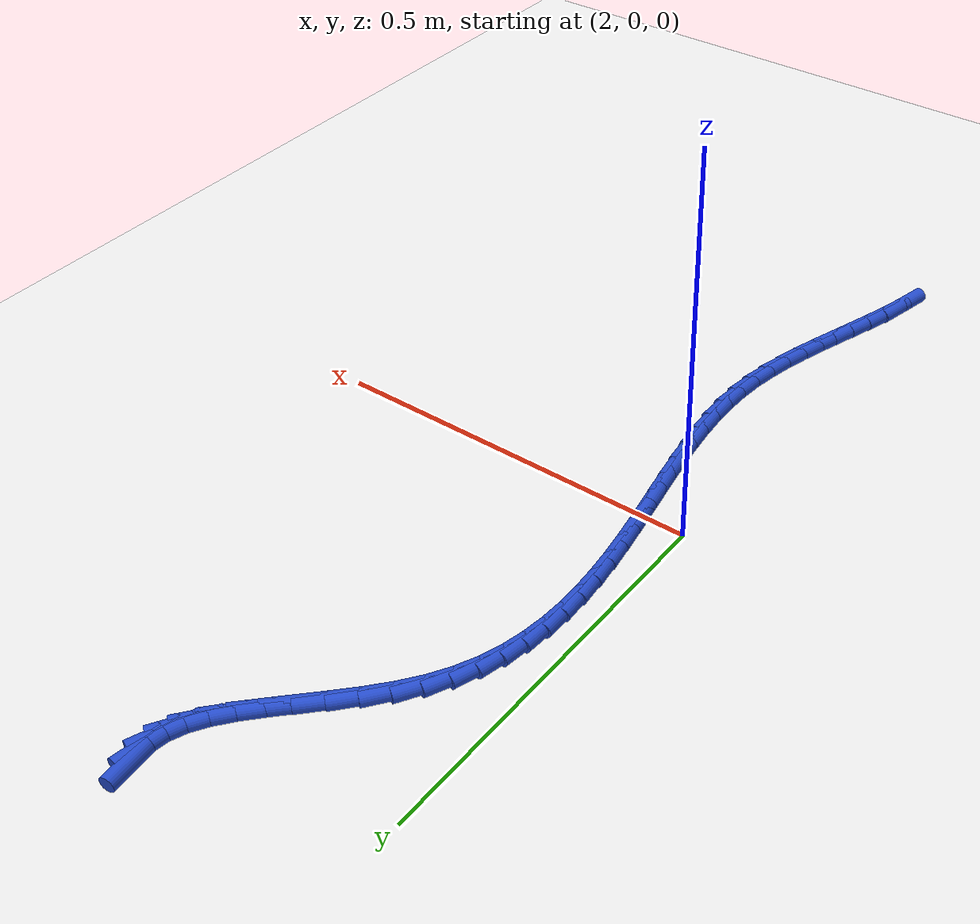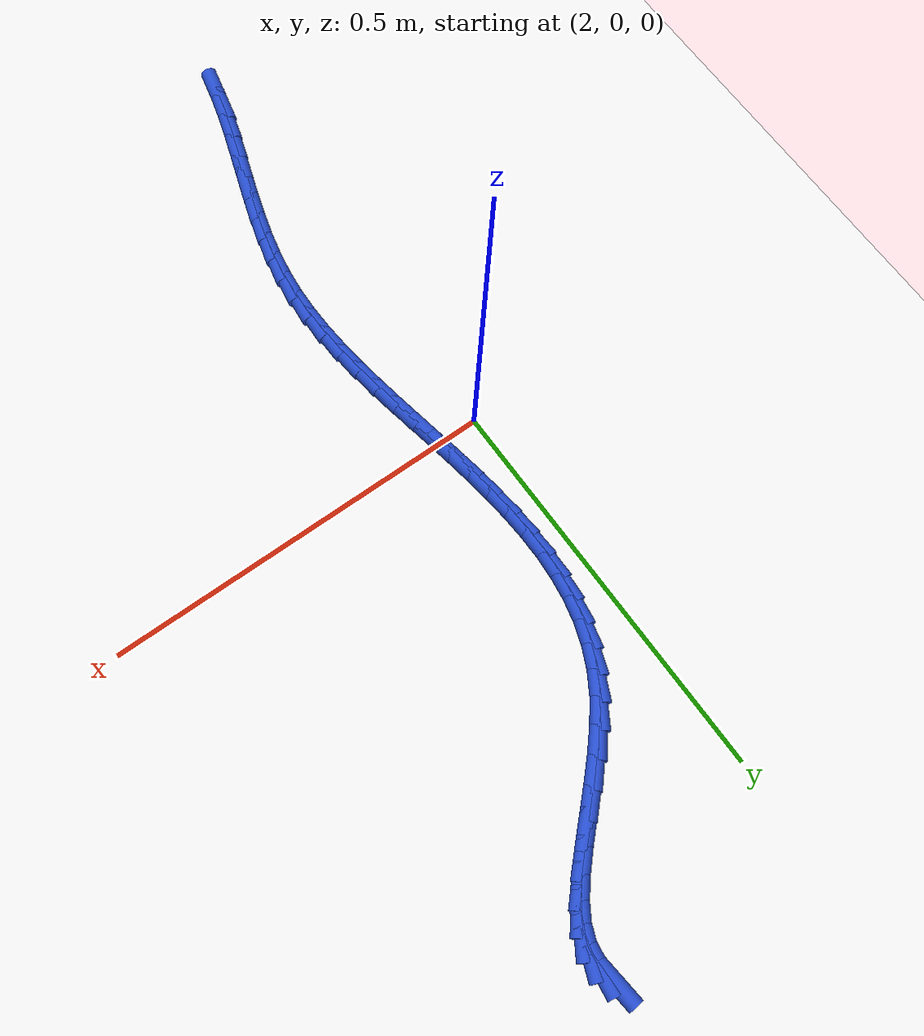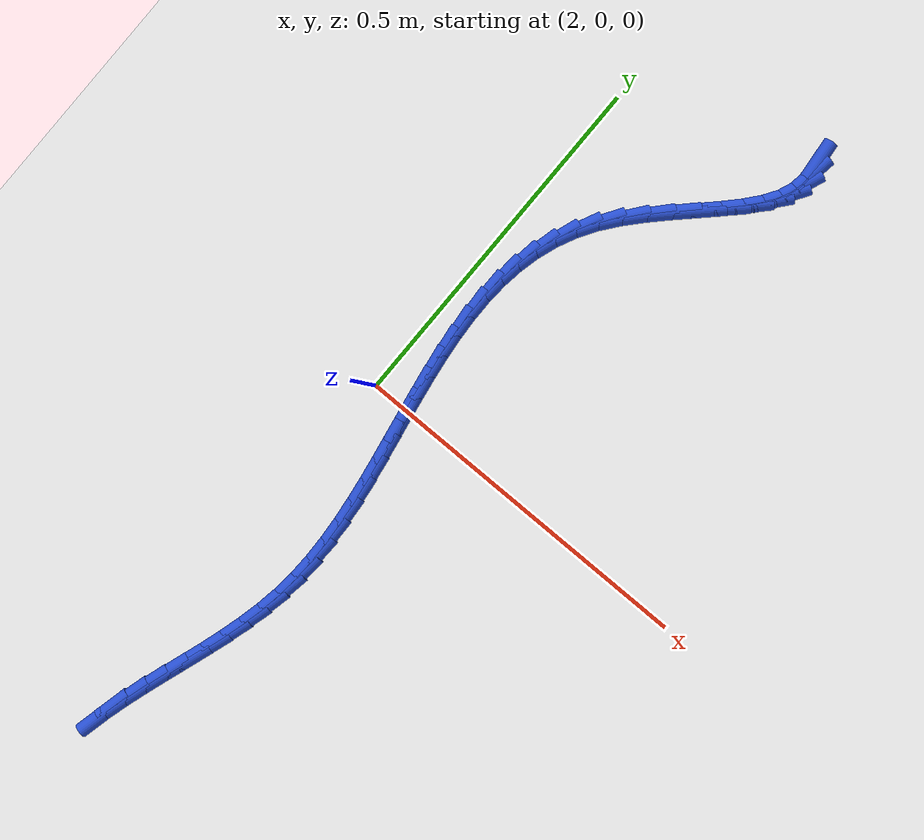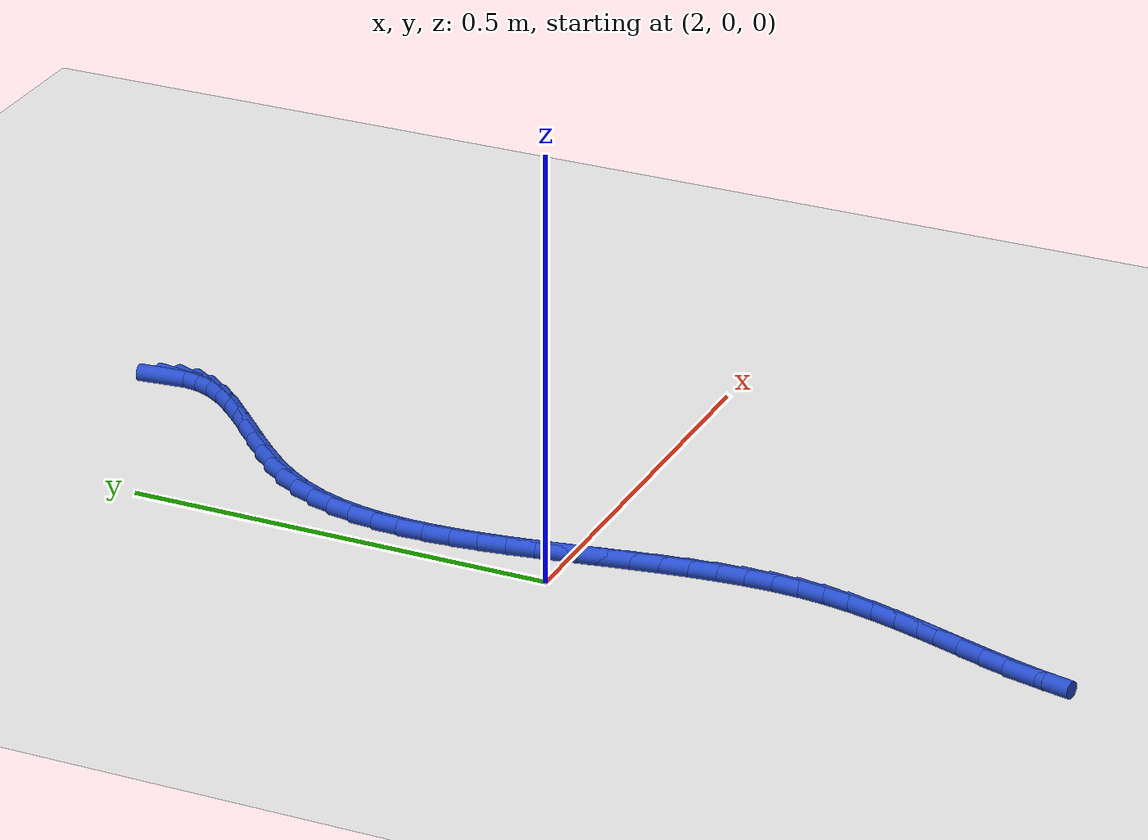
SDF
<sdf version="1.6">
 <world name="default">
  <model name="ground_plane">
   <static>1</static>
   <link name="link">
    <collision name="collision">
     <geometry><plane><normal>0 0 1</normal><size>100 100</size></plane></geometry>
     <surface><friction><ode><mu>100</mu><mu2>50</mu2></ode></friction></surface>
    </collision>
    <visual name="visual">
     <cast_shadows>0</cast_shadows>
     <geometry><plane><normal>0 0 1</normal><size>100 100</size></plane></geometry>
     <material>
      <script><uri>file://media/materials/scripts/gazebo.material</uri><name>Gazebo/WhiteGlow</name></script>
     </material>
    </visual>
   </link>
  </model>
  <model name="line">
   <link name="link_104">
    <pose>2.2593302322139337 0.5937234430600391 0.01 0 1.57 -1.4695713449307928</pose>
    <collision name="collision">
     <geometry><cylinder><radius>0.01</radius><length>0.08</length></cylinder></geometry>
    </collision>
    <visual name="visual">
     <material>
      <script><name>Gazebo/Blue</name><uri>file://media/materials/scripts/gazebo.material</uri></script>
     </material>
     <geometry><cylinder><radius>0.01</radius><length>0.08</length></cylinder></geometry>
    </visual>
   </link>
   <link name="link_105">
    <pose>2.261260132462824 0.5747231514913845 0.01 0 1.57 1.4249829995298156</pose>
    <collision name="collision">
     <geometry><cylinder><radius>0.01</radius><length>0.08</length></cylinder></geometry>
    </collision>
    <visual name="visual">
     <material>
      <script><name>Gazebo/Blue</name><uri>file://media/materials/scripts/gazebo.material</uri></script>
     </material>
     <geometry><cylinder><radius>0.01</radius><length>0.08</length></cylinder></geometry>
    </visual>
   </link>
   <link name="link_106">
    <pose>2.2584170312226823 0.5553633088962161 0.01 0 1.57 1.1897246050343935</pose>
    <collision name="collision">
     <geometry><cylinder><radius>0.01</radius><length>0.08</length></cylinder></geometry>
    </collision>
    <visual name="visual">
     <material>
      <script><name>Gazebo/Blue</name><uri>file://media/materials/scripts/gazebo.material</uri></script>
     </material>
     <geometry><cylinder><radius>0.01</radius><length>0.08</length></cylinder></geometry>
    </visual>
   </link>
   <link name="link_107">
    <pose>2.2504669341568886 0.535520605695175 0.01 0 1.57 0.9987901538650716</pose>
    <collision name="collision">
     <geometry><cylinder><radius>0.01</radius><length>0.08</length></cylinder></geometry>
    </collision>
    <visual name="visual">
     <material>
      <script><name>Gazebo/Blue</name><uri>file://media/materials/scripts/gazebo.material</uri></script>
     </material>
     <geometry><cylinder><radius>0.01</radius><length>0.08</length></cylinder></geometry>
    </visual>
   </link>
   <link name="link_108">
    <pose>2.237311254195292 0.5150862673399557 0.01 0 1.57 0.8781624858545988</pose>
    <collision name="collision">
     <geometry><cylinder><radius>0.01</radius><length>0.08</length></cylinder></geometry>
    </collision>
    <visual name="visual">
     <material>
      <script><name>Gazebo/Blue</name><uri>file://media/materials/scripts/gazebo.material</uri></script>
     </material>
     <geometry><cylinder><radius>0.01</radius><length>0.08</length></cylinder></geometry>
    </visual>
   </link>
   <link name="link_109">
    <pose>2.2198240266892286 0.4940115730661108 0.01 0 1.57 0.8102430776469247</pose>
    <collision name="collision">
     <geometry><cylinder><radius>0.01</radius><length>0.08</length></cylinder></geometry>
    </collision>
    <visual name="visual">
     <material>
      <script><name>Gazebo/Blue</name><uri>file://media/materials/scripts/gazebo.material</uri></script>
     </material>
     <geometry><cylinder><radius>0.01</radius><length>0.08</length></cylinder></geometry>
    </visual>
   </link>
   <link name="link_110">
    <pose>2.1991304442731185 0.47226330961226987 0.01 0 1.57 0.7783299637950013</pose>
    <collision name="collision">
     <geometry><cylinder><radius>0.01</radius><length>0.08</length></cylinder></geometry>
    </collision>
    <visual name="visual">
     <material>
      <script><name>Gazebo/Blue</name><uri>file://media/materials/scripts/gazebo.material</uri></script>
     </material>
     <geometry><cylinder><radius>0.01</radius><length>0.08</length></cylinder></geometry>
    </visual>
   </link>
   <link name="link_111">
    <pose>2.176355699887241 0.44980826373594696 0.01 0 1.57 0.7739833527305716</pose>
    <collision name="collision">
     <geometry><cylinder><radius>0.01</radius><length>0.08</length></cylinder></geometry>
    </collision>
    <visual name="visual">
     <material>
      <script><name>Gazebo/Blue</name><uri>file://media/materials/scripts/gazebo.material</uri></script>
     </material>
     <geometry><cylinder><radius>0.01</radius><length>0.08</length></cylinder></geometry>
    </visual>
   </link>
   <link name="link_112">
    <pose>2.1526249864718774 0.42661322219465636 0.01 0 1.57 0.7939559845560304</pose>
    <collision name="collision">
     <geometry><cylinder><radius>0.01</radius><length>0.08</length></cylinder></geometry>
    </collision>
    <visual name="visual">
     <material>
      <script><name>Gazebo/Blue</name><uri>file://media/materials/scripts/gazebo.material</uri></script>
     </material>
     <geometry><cylinder><radius>0.01</radius><length>0.08</length></cylinder></geometry>
    </visual>
   </link>
   <link name="link_113">
    <pose>2.129063496967305 0.40264497174591185 0.01 0 1.57 0.838653603792986</pose>
    <collision name="collision">
     <geometry><cylinder><radius>0.01</radius><length>0.08</length></cylinder></geometry>
    </collision>
    <visual name="visual">
     <material>
      <script><name>Gazebo/Blue</name><uri>file://media/materials/scripts/gazebo.material</uri></script>
     </material>
     <geometry><cylinder><radius>0.01</radius><length>0.08</length></cylinder></geometry>
    </visual>
   </link>
   <link name="link_114">
    <pose>2.1067964243138038 0.3778702991472281 0.01 0 1.57 0.9115747017940529</pose>
    <collision name="collision">
     <geometry><cylinder><radius>0.01</radius><length>0.08</length></cylinder></geometry>
    </collision>
    <visual name="visual">
     <material>
      <script><name>Gazebo/Blue</name><uri>file://media/materials/scripts/gazebo.material</uri></script>
     </material>
     <geometry><cylinder><radius>0.01</radius><length>0.08</length></cylinder></geometry>
    </visual>
   </link>
   <link name="link_115">
    <pose>2.086948961451654 0.35225599115611883 0.01 0 1.57 1.015308609664336</pose>
    <collision name="collision">
     <geometry><cylinder><radius>0.01</radius><length>0.08</length></cylinder></geometry>
    </collision>
    <visual name="visual">
     <material>
      <script><name>Gazebo/Blue</name><uri>file://media/materials/scripts/gazebo.material</uri></script>
     </material>
     <geometry><cylinder><radius>0.01</radius><length>0.08</length></cylinder></geometry>
    </visual>
   </link>
   <link name="link_116">
    <pose>2.070514463659539 0.32577783352353673 0.01 0 1.57 1.1283465357218607</pose>
    <collision name="collision">
     <geometry><cylinder><radius>0.01</radius><length>0.08</length></cylinder></geometry>
    </collision>
    <visual name="visual">
     <material>
      <script><name>Gazebo/Blue</name><uri>file://media/materials/scripts/gazebo.material</uri></script>
     </material>
     <geometry><cylinder><radius>0.01</radius><length>0.08</length></cylinder></geometry>
    </visual>
   </link>
   <link name="link_117">
    <pose>2.05757834647514 0.2984735862775333 0.01 0 1.57 1.236937117680018</pose>
    <collision name="collision">
     <geometry><cylinder><radius>0.01</radius><length>0.08</length></cylinder></geometry>
    </collision>
    <visual name="visual">
     <material>
      <script><name>Gazebo/Blue</name><uri>file://media/materials/scripts/gazebo.material</uri></script>
     </material>
     <geometry><cylinder><radius>0.01</radius><length>0.08</length></cylinder></geometry>
    </visual>
   </link>
   <link name="link_118">
    <pose>2.0478436962090063 0.27040710652771116 0.01 0 1.57 1.3376231012405686</pose>
    <collision name="collision">
     <geometry><cylinder><radius>0.01</radius><length>0.08</length></cylinder></geometry>
    </collision>
    <visual name="visual">
     <material>
      <script><name>Gazebo/Blue</name><uri>file://media/materials/scripts/gazebo.material</uri></script>
     </material>
     <geometry><cylinder><radius>0.01</radius><length>0.08</length></cylinder></geometry>
    </visual>
   </link>
   <link name="link_119">
    <pose>2.0410122645471485 0.241642342482661 0.01 0 1.57 1.428013026705768</pose>
    <collision name="collision">
     <geometry><cylinder><radius>0.01</radius><length>0.08</length></cylinder></geometry>
    </collision>
    <visual name="visual">
     <material>
      <script><name>Gazebo/Blue</name><uri>file://media/materials/scripts/gazebo.material</uri></script>
     </material>
     <geometry><cylinder><radius>0.01</radius><length>0.08</length></cylinder></geometry>
    </visual>
   </link>
   <link name="link_120">
    <pose>2.036785803175577 0.21224324235097397 0.01 0 1.57 1.5068272616887632</pose>
    <collision name="collision">
     <geometry><cylinder><radius>0.01</radius><length>0.08</length></cylinder></geometry>
    </collision>
    <visual name="visual">
     <material>
      <script><name>Gazebo/Blue</name><uri>file://media/materials/scripts/gazebo.material</uri></script>
     </material>
     <geometry><cylinder><radius>0.01</radius><length>0.08</length></cylinder></geometry>
    </visual>
   </link>
   <link name="link_121">
    <pose>2.0348660637803007 0.18227375434123957 0.01 0 1.57 -1.5678847167787344</pose>
    <collision name="collision">
     <geometry><cylinder><radius>0.01</radius><length>0.08</length></cylinder></geometry>
    </collision>
    <visual name="visual">
     <material>
      <script><name>Gazebo/Blue</name><uri>file://media/materials/scripts/gazebo.material</uri></script>
     </material>
     <geometry><cylinder><radius>0.01</radius><length>0.08</length></cylinder></geometry>
    </visual>
   </link>
   <link name="link_122">
    <pose>2.034954798047331 0.15179782666204883 0.01 0 1.57 -1.5126777773674571</pose>
    <collision name="collision">
     <geometry><cylinder><radius>0.01</radius><length>0.08</length></cylinder></geometry>
    </collision>
    <visual name="visual">
     <material>
      <script><name>Gazebo/Blue</name><uri>file://media/materials/scripts/gazebo.material</uri></script>
     </material>
     <geometry><cylinder><radius>0.01</radius><length>0.08</length></cylinder></geometry>
    </visual>
   </link>
   <link name="link_123">
    <pose>2.036753757662676 0.12087940752199215 0.01 0 1.57 -1.4685582490516331</pose>
    <collision name="collision">
     <geometry><cylinder><radius>0.01</radius><length>0.08</length></cylinder></geometry>
    </collision>
    <visual name="visual">
     <material>
      <script><name>Gazebo/Blue</name><uri>file://media/materials/scripts/gazebo.material</uri></script>
     </material>
     <geometry><cylinder><radius>0.01</radius><length>0.08</length></cylinder></geometry>
    </visual>
   </link>
   <link name="link_124">
    <pose>2.039964694312347 0.08958244512966015 0.01 0 1.57 -1.4348338958024054</pose>
    <collision name="collision">
     <geometry><cylinder><radius>0.01</radius><length>0.08</length></cylinder></geometry>
    </collision>
    <visual name="visual">
     <material>
      <script><name>Gazebo/Blue</name><uri>file://media/materials/scripts/gazebo.material</uri></script>
     </material>
     <geometry><cylinder><radius>0.01</radius><length>0.08</length></cylinder></geometry>
    </visual>
   </link>
   <link name="link_125">
    <pose>2.044289359682355 0.057970887693643336 0.01 0 1.57 -1.410850149807186</pose>
    <collision name="collision">
     <geometry><cylinder><radius>0.01</radius><length>0.08</length></cylinder></geometry>
    </collision>
    <visual name="visual">
     <material>
      <script><name>Gazebo/Blue</name><uri>file://media/materials/scripts/gazebo.material</uri></script>
     </material>
     <geometry><cylinder><radius>0.01</radius><length>0.08</length></cylinder></geometry>
    </visual>
   </link>
   <link name="link_126">
    <pose>2.0494295054587086 0.026108683422532274 0.01 0 1.57 -1.3960730154741505</pose>
    <collision name="collision">
     <geometry><cylinder><radius>0.01</radius><length>0.08</length></cylinder></geometry>
    </collision>
    <visual name="visual">
     <material>
      <script><name>Gazebo/Blue</name><uri>file://media/materials/scripts/gazebo.material</uri></script>
     </material>
     <geometry><cylinder><radius>0.01</radius><length>0.08</length></cylinder></geometry>
    </visual>
   </link>
   <link name="link_127">
    <pose>2.0550868833274176 -0.00594021947508265 0.01 0 1.57 -1.3901314532919269</pose>
    <collision name="collision">
     <geometry><cylinder><radius>0.01</radius><length>0.08</length></cylinder></geometry>
    </collision>
    <visual name="visual">
     <material>
      <script><name>Gazebo/Blue</name><uri>file://media/materials/scripts/gazebo.material</uri></script>
     </material>
     <geometry><cylinder><radius>0.01</radius><length>0.08</length></cylinder></geometry>
    </visual>
   </link>
   <link name="link_128">
    <pose>2.0609632449744923 -0.03811187279061074 0.01 0 1.57 -1.392835169889218</pose>
    <collision name="collision">
     <geometry><cylinder><radius>0.01</radius><length>0.08</length></cylinder></geometry>
    </collision>
    <visual name="visual">
     <material>
      <script><name>Gazebo/Blue</name><uri>file://media/materials/scripts/gazebo.material</uri></script>
     </material>
     <geometry><cylinder><radius>0.01</radius><length>0.08</length></cylinder></geometry>
    </visual>
   </link>
   <link name="link_129">
    <pose>2.0667603420859435 -0.07034232831546161 0.01 0 1.57 -1.4041776402437252</pose>
    <collision name="collision">
     <geometry><cylinder><radius>0.01</radius><length>0.08</length></cylinder></geometry>
    </collision>
    <visual name="visual">
     <material>
      <script><name>Gazebo/Blue</name><uri>file://media/materials/scripts/gazebo.material</uri></script>
     </material>
     <geometry><cylinder><radius>0.01</radius><length>0.08</length></cylinder></geometry>
    </visual>
   </link>
   <link name="link_130">
    <pose>2.07217992634778 -0.10256763784104465 0.01 0 1.57 -1.4243284783498862</pose>
    <collision name="collision">
     <geometry><cylinder><radius>0.01</radius><length>0.08</length></cylinder></geometry>
    </collision>
    <visual name="visual">
     <material>
      <script><name>Gazebo/Blue</name><uri>file://media/materials/scripts/gazebo.material</uri></script>
     </material>
     <geometry><cylinder><radius>0.01</radius><length>0.08</length></cylinder></geometry>
    </visual>
   </link>
   <link name="link_131">
    <pose>2.0769237494460127 -0.1347238531587694 0.01 0 1.57 -1.4536142296532368</pose>
    <collision name="collision">
     <geometry><cylinder><radius>0.01</radius><length>0.08</length></cylinder></geometry>
    </collision>
    <visual name="visual">
     <material>
      <script><name>Gazebo/Blue</name><uri>file://media/materials/scripts/gazebo.material</uri></script>
     </material>
     <geometry><cylinder><radius>0.01</radius><length>0.08</length></cylinder></geometry>
    </visual>
   </link>
   <link name="link_132">
    <pose>2.0806935630666508 -0.16674702606004527 0.01 0 1.57 -1.4924819451534839</pose>
    <collision name="collision">
     <geometry><cylinder><radius>0.01</radius><length>0.08</length></cylinder></geometry>
    </collision>
    <visual name="visual">
     <material>
      <script><name>Gazebo/Blue</name><uri>file://media/materials/scripts/gazebo.material</uri></script>
     </material>
     <geometry><cylinder><radius>0.01</radius><length>0.08</length></cylinder></geometry>
    </visual>
   </link>
   <link name="link_133">
    <pose>2.083191118895705 -0.19857320833628175 0.01 0 1.57 -1.5414354470463512</pose>
    <collision name="collision">
     <geometry><cylinder><radius>0.01</radius><length>0.08</length></cylinder></geometry>
    </collision>
    <visual name="visual">
     <material>
      <script><name>Gazebo/Blue</name><uri>file://media/materials/scripts/gazebo.material</uri></script>
     </material>
     <geometry><cylinder><radius>0.01</radius><length>0.08</length></cylinder></geometry>
    </visual>
   </link>
   <link name="link_134">
    <pose>2.0841181686191854 -0.23013845177888834 0.01 0 1.57 1.5406615993870583</pose>
    <collision name="collision">
     <geometry><cylinder><radius>0.01</radius><length>0.08</length></cylinder></geometry>
    </collision>
    <visual name="visual">
     <material>
      <script><name>Gazebo/Blue</name><uri>file://media/materials/scripts/gazebo.material</uri></script>
     </material>
     <geometry><cylinder><radius>0.01</radius><length>0.08</length></cylinder></geometry>
    </visual>
   </link>
   <link name="link_135">
    <pose>2.083176463923102 -0.2613788081792746 0.01 0 1.57 1.470783067310562</pose>
    <collision name="collision">
     <geometry><cylinder><radius>0.01</radius><length>0.08</length></cylinder></geometry>
    </collision>
    <visual name="visual">
     <material>
      <script><name>Gazebo/Blue</name><uri>file://media/materials/scripts/gazebo.material</uri></script>
     </material>
     <geometry><cylinder><radius>0.01</radius><length>0.08</length></cylinder></geometry>
    </visual>
   </link>
   <link name="link_136">
    <pose>2.080080343876967 -0.292232617307837 0.01 0 1.57 1.4012558245433664</pose>
    <collision name="collision">
     <geometry><cylinder><radius>0.01</radius><length>0.08</length></cylinder></geometry>
    </collision>
    <visual name="visual">
     <material>
      <script><name>Gazebo/Blue</name><uri>file://media/materials/scripts/gazebo.material</uri></script>
     </material>
     <geometry><cylinder><radius>0.01</radius><length>0.08</length></cylinder></geometry>
    </visual>
   </link>
   <link name="link_137">
    <pose>2.0748654007649976 -0.3226966123734996 0.01 0 1.57 1.343854834736413</pose>
    <collision name="collision">
     <geometry><cylinder><radius>0.01</radius><length>0.08</length></cylinder></geometry>
    </collision>
    <visual name="visual">
     <material>
      <script><name>Gazebo/Blue</name><uri>file://media/materials/scripts/gazebo.material</uri></script>
     </material>
     <geometry><cylinder><radius>0.01</radius><length>0.08</length></cylinder></geometry>
    </visual>
   </link>
   <link name="link_138">
    <pose>2.0679071722468185 -0.35282931765364284 0.01 0 1.57 1.2994020416662242</pose>
    <collision name="collision">
     <geometry><cylinder><radius>0.01</radius><length>0.08</length></cylinder></geometry>
    </collision>
    <visual name="visual">
     <material>
      <script><name>Gazebo/Blue</name><uri>file://media/materials/scripts/gazebo.material</uri></script>
     </material>
     <geometry><cylinder><radius>0.01</radius><length>0.08</length></cylinder></geometry>
    </visual>
   </link>
   <link name="link_139">
    <pose>2.0595975255465055 -0.3826922256120318 0.01 0 1.57 1.2678458943947435</pose>
    <collision name="collision">
     <geometry><cylinder><radius>0.01</radius><length>0.08</length></cylinder></geometry>
    </collision>
    <visual name="visual">
     <material>
      <script><name>Gazebo/Blue</name><uri>file://media/materials/scripts/gazebo.material</uri></script>
     </material>
     <geometry><cylinder><radius>0.01</radius><length>0.08</length></cylinder></geometry>
    </visual>
   </link>
   <link name="link_140">
    <pose>2.0503283278881366 -0.4123468287124319 0.01 0 1.57 1.2490167619924768</pose>
    <collision name="collision">
     <geometry><cylinder><radius>0.01</radius><length>0.08</length></cylinder></geometry>
    </collision>
    <visual name="visual">
     <material>
      <script><name>Gazebo/Blue</name><uri>file://media/materials/scripts/gazebo.material</uri></script>
     </material>
     <geometry><cylinder><radius>0.01</radius><length>0.08</length></cylinder></geometry>
    </visual>
   </link>
   <link name="link_141">
    <pose>2.0404914464957886 -0.4418546194186082 0.01 0 1.57 1.242781891761491</pose>
    <collision name="collision">
     <geometry><cylinder><radius>0.01</radius><length>0.08</length></cylinder></geometry>
    </collision>
    <visual name="visual">
     <material>
      <script><name>Gazebo/Blue</name><uri>file://media/materials/scripts/gazebo.material</uri></script>
     </material>
     <geometry><cylinder><radius>0.01</radius><length>0.08</length></cylinder></geometry>
    </visual>
   </link>
   <link name="link_142">
    <pose>2.030478748593538 -0.4712770901943263 0.01 0 1.57 1.2491345724383032</pose>
    <collision name="collision">
     <geometry><cylinder><radius>0.01</radius><length>0.08</length></cylinder></geometry>
    </collision>
    <visual name="visual">
     <material>
      <script><name>Gazebo/Blue</name><uri>file://media/materials/scripts/gazebo.material</uri></script>
     </material>
     <geometry><cylinder><radius>0.01</radius><length>0.08</length></cylinder></geometry>
    </visual>
   </link>
   <link name="link_143">
    <pose>2.0206821014054612 -0.5006757335033513 0.01 0 1.57 1.2682246057039166</pose>
    <collision name="collision">
     <geometry><cylinder><radius>0.01</radius><length>0.08</length></cylinder></geometry>
    </collision>
    <visual name="visual">
     <material>
      <script><name>Gazebo/Blue</name><uri>file://media/materials/scripts/gazebo.material</uri></script>
     </material>
     <geometry><cylinder><radius>0.01</radius><length>0.08</length></cylinder></geometry>
    </visual>
   </link>
   <link name="link_144">
    <pose>2.011493372155636 -0.5301120418094484 0.01 0 1.57 1.3003320880393365</pose>
    <collision name="collision">
     <geometry><cylinder><radius>0.01</radius><length>0.08</length></cylinder></geometry>
    </collision>
    <visual name="visual">
     <material>
      <script><name>Gazebo/Blue</name><uri>file://media/materials/scripts/gazebo.material</uri></script>
     </material>
     <geometry><cylinder><radius>0.01</radius><length>0.08</length></cylinder></geometry>
    </visual>
   </link>
   <link name="link_145">
    <pose>2.0033044280681382 -0.559647507576382 0.01 0 1.57 1.3457776965861095</pose>
    <collision name="collision">
     <geometry><cylinder><radius>0.01</radius><length>0.08</length></cylinder></geometry>
    </collision>
    <visual name="visual">
     <material>
      <script><name>Gazebo/Blue</name><uri>file://media/materials/scripts/gazebo.material</uri></script>
     </material>
     <geometry><cylinder><radius>0.01</radius><length>0.08</length></cylinder></geometry>
    </visual>
   </link>
  </model>
 </world>
</sdf>
